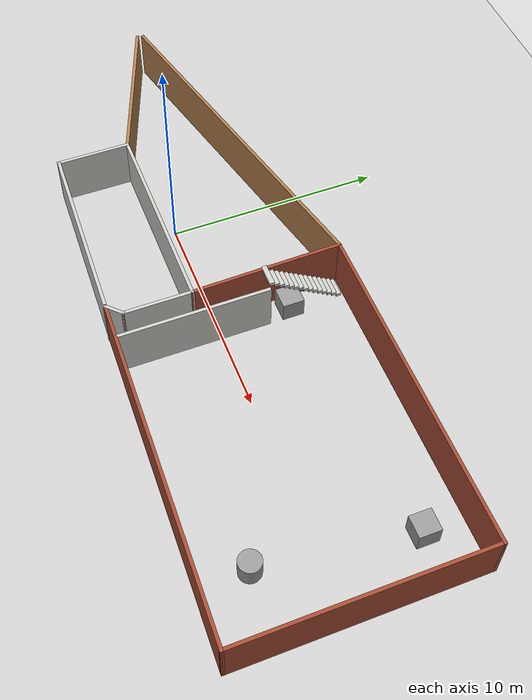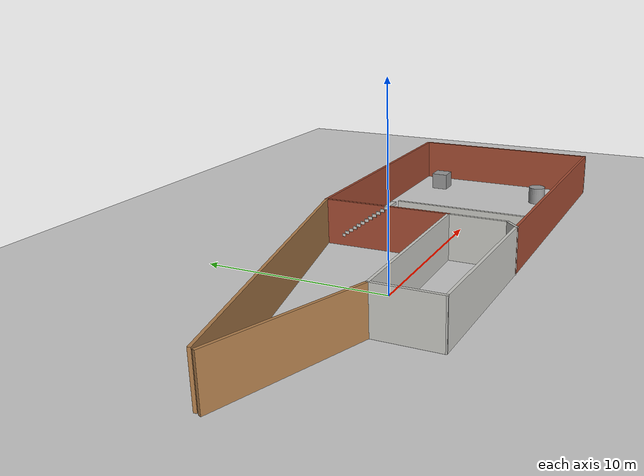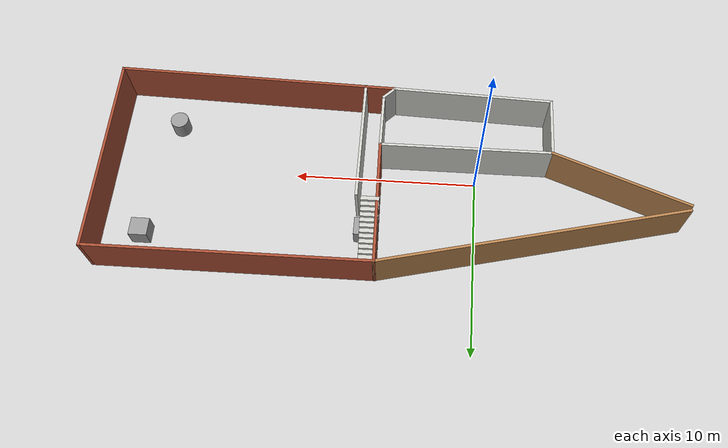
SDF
<sdf version="1.7">
 <world name="default">
  <light name="sun" type="directional">
   <pose>0 0 10 0 -0 0</pose>
   <diffuse>0.8 0.8 0.8 1</diffuse>
   <specular>0.2 0.2 0.2 1</specular>
   <attenuation>
    <range>1000</range>
    <constant>0.9</constant>
    <linear>0.01</linear>
    <quadratic>0.001</quadratic>
   </attenuation>
   <direction>-0.5 0.1 -0.9</direction>
   <spot><inner_angle>0</inner_angle><outer_angle>0</outer_angle><falloff>0</falloff></spot>
  </light>
  <model name="ground_plane">
   <static>1</static>
   <link name="link">
    <collision name="collision">
     <geometry><plane><normal>0 0 1</normal><size>100 100</size></plane></geometry>
     <surface>
      <contact><collide_bitmask>65535</collide_bitmask></contact>
      <friction><ode><mu>100</mu><mu2>50</mu2></ode></friction>
     </surface>
    </collision>
    <visual name="visual">
     <cast_shadows>0</cast_shadows>
     <geometry><plane><normal>0 0 1</normal><size>100 100</size></plane></geometry>
     <material>
      <script><uri>file://media/materials/scripts/gazebo.material</uri><name>Gazebo/Grey</name></script>
     </material>
    </visual>
   </link>
  </model>
  <gravity>0 0 -9.8</gravity>
  <magnetic_field>6e-06 2.3e-05 -4.2e-05</magnetic_field>
  <atmosphere type="adiabatic"/>
  <physics type="ode">
   <max_step_size>0.001</max_step_size>
   <real_time_factor>1</real_time_factor>
   <real_time_update_rate>1000</real_time_update_rate>
  </physics>
  <scene><ambient>0.4 0.4 0.4 1</ambient><background>0.7 0.7 0.7 1</background><shadows>1</shadows></scene>
  <spherical_coordinates>
   <surface_model>EARTH_WGS84</surface_model>
   <latitude_deg>0</latitude_deg>
   <longitude_deg>0</longitude_deg>
   <elevation>0</elevation>
   <heading_deg>0</heading_deg>
  </spherical_coordinates>
  <model name="walls_world">
   <pose>4.53343 0.476876 0 0 -0 0</pose>
   <link name="Stairs_0">
    <visual name="Stairs_0_Visual_0">
     <pose>1.09555 5.24812 0.083333 0 -0 0</pose>
     <geometry><box><size>1 0.233333 0.166667</size></box></geometry>
     <material>
      <script><uri>file://media/materials/scripts/gazebo.material</uri><name>Gazebo/CeilingTiled</name></script>
      <ambient>0.760784 0.662745 0.627451 1</ambient>
     </material>
     <meta><layer>0</layer></meta>
    </visual>
    <collision name="Stairs_0_Collision_0">
     <geometry><box><size>1 0.233333 0.166667</size></box></geometry>
     <pose>1.09555 5.24812 0.083333 0 -0 0</pose>
    </collision>
    <visual name="Stairs_0_Visual_1">
     <pose>1.09555 5.01479 0.25 0 -0 0</pose>
     <geometry><box><size>1 0.233333 0.166667</size></box></geometry>
     <material>
      <script><uri>file://media/materials/scripts/gazebo.material</uri><name>Gazebo/CeilingTiled</name></script>
      <ambient>0.760784 0.662745 0.627451 1</ambient>
     </material>
     <meta><layer>0</layer></meta>
    </visual>
    <collision name="Stairs_0_Collision_1">
     <geometry><box><size>1 0.233333 0.166667</size></box></geometry>
     <pose>1.09555 5.01479 0.25 0 -0 0</pose>
    </collision>
    <visual name="Stairs_0_Visual_2">
     <pose>1.09555 4.78145 0.416667 0 -0 0</pose>
     <geometry><box><size>1 0.233333 0.166667</size></box></geometry>
     <material>
      <script><uri>file://media/materials/scripts/gazebo.material</uri><name>Gazebo/CeilingTiled</name></script>
      <ambient>0.760784 0.662745 0.627451 1</ambient>
     </material>
     <meta><layer>0</layer></meta>
    </visual>
    <collision name="Stairs_0_Collision_2">
     <geometry><box><size>1 0.233333 0.166667</size></box></geometry>
     <pose>1.09555 4.78145 0.416667 0 -0 0</pose>
    </collision>
    <visual name="Stairs_0_Visual_3">
     <pose>1.09555 4.54812 0.583333 0 -0 0</pose>
     <geometry><box><size>1 0.233333 0.166667</size></box></geometry>
     <material>
      <script><uri>file://media/materials/scripts/gazebo.material</uri><name>Gazebo/CeilingTiled</name></script>
      <ambient>0.760784 0.662745 0.627451 1</ambient>
     </material>
     <meta><layer>0</layer></meta>
    </visual>
    <collision name="Stairs_0_Collision_3">
     <geometry><box><size>1 0.233333 0.166667</size></box></geometry>
     <pose>1.09555 4.54812 0.583333 0 -0 0</pose>
    </collision>
    <visual name="Stairs_0_Visual_4">
     <pose>1.09555 4.31479 0.75 0 -0 0</pose>
     <geometry><box><size>1 0.233333 0.166667</size></box></geometry>
     <material>
      <script><uri>file://media/materials/scripts/gazebo.material</uri><name>Gazebo/CeilingTiled</name></script>
      <ambient>0.760784 0.662745 0.627451 1</ambient>
     </material>
     <meta><layer>0</layer></meta>
    </visual>
    <collision name="Stairs_0_Collision_4">
     <geometry><box><size>1 0.233333 0.166667</size></box></geometry>
     <pose>1.09555 4.31479 0.75 0 -0 0</pose>
    </collision>
    <visual name="Stairs_0_Visual_5">
     <pose>1.09555 4.08145 0.916667 0 -0 0</pose>
     <geometry><box><size>1 0.233333 0.166667</size></box></geometry>
     <material>
      <script><uri>file://media/materials/scripts/gazebo.material</uri><name>Gazebo/CeilingTiled</name></script>
      <ambient>0.760784 0.662745 0.627451 1</ambient>
     </material>
     <meta><layer>0</layer></meta>
    </visual>
    <collision name="Stairs_0_Collision_5">
     <geometry><box><size>1 0.233333 0.166667</size></box></geometry>
     <pose>1.09555 4.08145 0.916667 0 -0 0</pose>
    </collision>
    <visual name="Stairs_0_Visual_6">
     <pose>1.09555 3.84812 1.08333 0 -0 0</pose>
     <geometry><box><size>1 0.233333 0.166667</size></box></geometry>
     <material>
      <script><uri>file://media/materials/scripts/gazebo.material</uri><name>Gazebo/CeilingTiled</name></script>
      <ambient>0.760784 0.662745 0.627451 1</ambient>
     </material>
     <meta><layer>0</layer></meta>
    </visual>
    <collision name="Stairs_0_Collision_6">
     <geometry><box><size>1 0.233333 0.166667</size></box></geometry>
     <pose>1.09555 3.84812 1.08333 0 -0 0</pose>
    </collision>
    <visual name="Stairs_0_Visual_7">
     <pose>1.09555 3.61479 1.25 0 -0 0</pose>
     <geometry><box><size>1 0.233333 0.166667</size></box></geometry>
     <material>
      <script><uri>file://media/materials/scripts/gazebo.material</uri><name>Gazebo/CeilingTiled</name></script>
      <ambient>0.760784 0.662745 0.627451 1</ambient>
     </material>
     <meta><layer>0</layer></meta>
    </visual>
    <collision name="Stairs_0_Collision_7">
     <geometry><box><size>1 0.233333 0.166667</size></box></geometry>
     <pose>1.09555 3.61479 1.25 0 -0 0</pose>
    </collision>
    <visual name="Stairs_0_Visual_8">
     <pose>1.09555 3.38145 1.41667 0 -0 0</pose>
     <geometry><box><size>1 0.233333 0.166667</size></box></geometry>
     <material>
      <script><uri>file://media/materials/scripts/gazebo.material</uri><name>Gazebo/CeilingTiled</name></script>
      <ambient>0.760784 0.662745 0.627451 1</ambient>
     </material>
     <meta><layer>0</layer></meta>
    </visual>
    <collision name="Stairs_0_Collision_8">
     <geometry><box><size>1 0.233333 0.166667</size></box></geometry>
     <pose>1.09555 3.38145 1.41667 0 -0 0</pose>
    </collision>
    <visual name="Stairs_0_Visual_9">
     <pose>1.09555 3.14812 1.58333 0 -0 0</pose>
     <geometry><box><size>1 0.233333 0.166667</size></box></geometry>
     <material>
      <script><uri>file://media/materials/scripts/gazebo.material</uri><name>Gazebo/CeilingTiled</name></script>
      <ambient>0.760784 0.662745 0.627451 1</ambient>
     </material>
     <meta><layer>0</layer></meta>
    </visual>
    <collision name="Stairs_0_Collision_9">
     <geometry><box><size>1 0.233333 0.166667</size></box></geometry>
     <pose>1.09555 3.14812 1.58333 0 -0 0</pose>
    </collision>
    <visual name="Stairs_0_Visual_10">
     <pose>1.09555 2.91479 1.75 0 -0 0</pose>
     <geometry><box><size>1 0.233333 0.166667</size></box></geometry>
     <material>
      <script><uri>file://media/materials/scripts/gazebo.material</uri><name>Gazebo/CeilingTiled</name></script>
      <ambient>0.760784 0.662745 0.627451 1</ambient>
     </material>
     <meta><layer>0</layer></meta>
    </visual>
    <collision name="Stairs_0_Collision_10">
     <geometry><box><size>1 0.233333 0.166667</size></box></geometry>
     <pose>1.09555 2.91479 1.75 0 -0 0</pose>
    </collision>
    <visual name="Stairs_0_Visual_11">
     <pose>1.09555 2.68145 1.91667 0 -0 0</pose>
     <geometry><box><size>1 0.233333 0.166667</size></box></geometry>
     <material>
      <script><uri>file://media/materials/scripts/gazebo.material</uri><name>Gazebo/CeilingTiled</name></script>
      <ambient>0.760784 0.662745 0.627451 1</ambient>
     </material>
     <meta><layer>0</layer></meta>
    </visual>
    <collision name="Stairs_0_Collision_11">
     <geometry><box><size>1 0.233333 0.166667</size></box></geometry>
     <pose>1.09555 2.68145 1.91667 0 -0 0</pose>
    </collision>
    <visual name="Stairs_0_Visual_12">
     <pose>1.09555 2.44812 2.08333 0 -0 0</pose>
     <geometry><box><size>1 0.233333 0.166667</size></box></geometry>
     <material>
      <script><uri>file://media/materials/scripts/gazebo.material</uri><name>Gazebo/CeilingTiled</name></script>
      <ambient>0.760784 0.662745 0.627451 1</ambient>
     </material>
     <meta><layer>0</layer></meta>
    </visual>
    <collision name="Stairs_0_Collision_12">
     <geometry><box><size>1 0.233333 0.166667</size></box></geometry>
     <pose>1.09555 2.44812 2.08333 0 -0 0</pose>
    </collision>
    <visual name="Stairs_0_Visual_13">
     <pose>1.09555 2.21479 2.25 0 -0 0</pose>
     <geometry><box><size>1 0.233333 0.166667</size></box></geometry>
     <material>
      <script><uri>file://media/materials/scripts/gazebo.material</uri><name>Gazebo/CeilingTiled</name></script>
      <ambient>0.760784 0.662745 0.627451 1</ambient>
     </material>
     <meta><layer>0</layer></meta>
    </visual>
    <collision name="Stairs_0_Collision_13">
     <geometry><box><size>1 0.233333 0.166667</size></box></geometry>
     <pose>1.09555 2.21479 2.25 0 -0 0</pose>
    </collision>
    <visual name="Stairs_0_Visual_14">
     <pose>1.09555 1.98145 2.41667 0 -0 0</pose>
     <geometry><box><size>1 0.233333 0.166667</size></box></geometry>
     <material>
      <script><uri>file://media/materials/scripts/gazebo.material</uri><name>Gazebo/CeilingTiled</name></script>
      <ambient>0.760784 0.662745 0.627451 1</ambient>
     </material>
     <meta><layer>0</layer></meta>
    </visual>
    <collision name="Stairs_0_Collision_14">
     <geometry><box><size>1 0.233333 0.166667</size></box></geometry>
     <pose>1.09555 1.98145 2.41667 0 -0 0</pose>
    </collision>
   </link>
   <link name="Wall_0">
    <collision name="Wall_0_Collision">
     <geometry><box><size>3.5 0.15 2.5</size></box></geometry>
     <pose>0 0 1.25 0 -0 0</pose>
    </collision>
    <visual name="Wall_0_Visual">
     <pose>0 0 1.25 0 -0 0</pose>
     <geometry><box><size>3.5 0.15 2.5</size></box></geometry>
     <material>
      <script><uri>file://media/materials/scripts/gazebo.material</uri><name>Gazebo/CeilingTiled</name></script>
      <ambient>1 1 1 1</ambient>
     </material>
     <meta><layer>0</layer></meta>
    </visual>
    <pose>-8.56343 -3.06188 0 0 -0 1.5708</pose>
   </link>
   <link name="Wall_1">
    <collision name="Wall_1_Collision">
     <geometry><box><size>9.5 0.15 2.5</size></box></geometry>
     <pose>0 0 1.25 0 -0 0</pose>
    </collision>
    <visual name="Wall_1_Visual">
     <pose>0 0 1.25 0 -0 0</pose>
     <geometry><box><size>9.5 0.15 2.5</size></box></geometry>
     <material>
      <script><uri>file://media/materials/scripts/gazebo.material</uri><name>Gazebo/CeilingTiled</name></script>
      <ambient>1 1 1 1</ambient>
     </material>
     <meta><layer>0</layer></meta>
    </visual>
    <pose>-3.88843 -1.38688 0 0 -0 0</pose>
   </link>
   <link name="Wall_10">
    <collision name="Wall_10_Collision">
     <geometry><box><size>16.9098 0.15 2.5</size></box></geometry>
     <pose>0 0 1.25 0 -0 0</pose>
    </collision>
    <visual name="Wall_10_Visual">
     <pose>0 0 1.25 0 -0 0</pose>
     <geometry><box><size>16.9098 0.15 2.5</size></box></geometry>
     <material>
      <script><uri>file://media/materials/scripts/gazebo.material</uri><name>Gazebo/Wood</name></script>
      <ambient>1 1 1 1</ambient>
     </material>
     <meta><layer>0</layer></meta>
    </visual>
    <pose>-7.49968 3.60157 0 0 -0 0.233855</pose>
   </link>
   <link name="Wall_11">
    <collision name="Wall_11_Collision">
     <geometry><box><size>15.25 0.15 2.5</size></box></geometry>
     <pose>0 0 1.25 0 -0 0</pose>
    </collision>
    <visual name="Wall_11_Visual">
     <pose>0 0 1.25 0 -0 0</pose>
     <geometry><box><size>15.25 0.15 2.5</size></box></geometry>
     <material>
      <script><uri>file://media/materials/scripts/gazebo.material</uri><name>Gazebo/Bricks</name></script>
      <ambient>1 1 1 1</ambient>
     </material>
     <meta><layer>0</layer></meta>
    </visual>
    <pose>8.20212 5.54344 0 0 -0 0</pose>
   </link>
   <link name="Wall_12">
    <collision name="Wall_12_Collision">
     <geometry><box><size>11.25 0.15 2.5</size></box></geometry>
     <pose>0 0 1.25 0 -0 0</pose>
    </collision>
    <visual name="Wall_12_Visual">
     <pose>0 0 1.25 0 -0 0</pose>
     <geometry><box><size>11.25 0.15 2.5</size></box></geometry>
     <material>
      <script><uri>file://media/materials/scripts/gazebo.material</uri><name>Gazebo/Bricks</name></script>
      <ambient>1 1 1 1</ambient>
     </material>
     <meta><layer>0</layer></meta>
    </visual>
    <pose>15.7521 -0.006558 0 0 -0 -1.5708</pose>
   </link>
   <link name="Wall_13">
    <collision name="Wall_13_Collision">
     <geometry><box><size>15.7236 0.15 2.5</size></box></geometry>
     <pose>0 0 1.25 0 -0 0</pose>
    </collision>
    <visual name="Wall_13_Visual">
     <pose>0 0 1.25 0 -0 0</pose>
     <geometry><box><size>15.7236 0.15 2.5</size></box></geometry>
     <material>
      <script><uri>file://media/materials/scripts/gazebo.material</uri><name>Gazebo/Bricks</name></script>
      <ambient>1 1 1 1</ambient>
     </material>
     <meta><layer>0</layer></meta>
    </visual>
    <pose>7.96882 -5.32224 0 0 -0 3.1115</pose>
   </link>
   <link name="Wall_15">
    <collision name="Wall_15_Collision">
     <geometry><box><size>7 0.15 2.5</size></box></geometry>
     <pose>0 0 1.25 0 -0 0</pose>
    </collision>
    <visual name="Wall_15_Visual">
     <pose>0 0 1.25 0 -0 0</pose>
     <geometry><box><size>7 0.15 2.5</size></box></geometry>
     <material>
      <script><uri>file://media/materials/scripts/gazebo.material</uri><name>Gazebo/CeilingTiled</name></script>
      <ambient>0.760784 0.662745 0.627451 1</ambient>
     </material>
     <meta><layer>0</layer></meta>
    </visual>
    <pose>1.84458 -1.68112 0 0 -0 1.5708</pose>
   </link>
   <link name="Wall_2">
    <collision name="Wall_2_Collision">
     <geometry><box><size>3.25 0.15 2.5</size></box></geometry>
     <pose>0 0 1.25 0 -0 0</pose>
    </collision>
    <visual name="Wall_2_Visual">
     <pose>0 0 1.25 0 -0 0</pose>
     <geometry><box><size>3.25 0.15 2.5</size></box></geometry>
     <material>
      <script><uri>file://media/materials/scripts/gazebo.material</uri><name>Gazebo/CeilingTiled</name></script>
      <ambient>1 1 1 1</ambient>
     </material>
     <meta><layer>0</layer></meta>
    </visual>
    <pose>0.786568 -2.93688 0 0 -0 -1.5708</pose>
   </link>
   <link name="Wall_3">
    <collision name="Wall_3_Collision">
     <geometry><box><size>1 0.15 2.5</size></box></geometry>
     <pose>0 0 1.25 0 -0 0</pose>
    </collision>
    <visual name="Wall_3_Visual">
     <pose>0 0 1.25 0 -0 0</pose>
     <geometry><box><size>1 0.15 2.5</size></box></geometry>
     <material>
      <script><uri>file://media/materials/scripts/gazebo.material</uri><name>Gazebo/CeilingTiled</name></script>
      <ambient>1 1 1 1</ambient>
     </material>
     <meta><layer>0</layer></meta>
    </visual>
    <pose>0.486048 -4.7874 0 0 -0 -2.35619</pose>
   </link>
   <link name="Wall_4">
    <collision name="Wall_4_Collision">
     <geometry><box><size>8.906 0.15 2.5</size></box></geometry>
     <pose>0 0 1.25 0 -0 0</pose>
    </collision>
    <visual name="Wall_4_Visual">
     <pose>0 0 1.25 0 -0 0</pose>
     <geometry><box><size>8.906 0.15 2.5</size></box></geometry>
     <material>
      <script><uri>file://media/materials/scripts/gazebo.material</uri><name>Gazebo/CeilingTiled</name></script>
      <ambient>1 1 1 1</ambient>
     </material>
     <meta><layer>0</layer></meta>
    </visual>
    <pose>-4.18895 -4.9124 0 0 -0 3.10149</pose>
   </link>
   <link name="Wall_6">
    <collision name="Wall_6_Collision">
     <geometry><box><size>7.08162 0.15 2.5</size></box></geometry>
     <pose>0 0 1.25 0 -0 0</pose>
    </collision>
    <visual name="Wall_6_Visual">
     <pose>0 0 1.25 0 -0 0</pose>
     <geometry><box><size>7.08162 0.15 2.5</size></box></geometry>
     <material>
      <script><uri>file://media/materials/scripts/gazebo.material</uri><name>Gazebo/Bricks</name></script>
      <ambient>1 1 1 1</ambient>
     </material>
     <meta><layer>0</layer></meta>
    </visual>
    <pose>0.719344 2.07828 0 0 -0 -1.5514</pose>
   </link>
   <link name="Wall_8">
    <collision name="Wall_8_Collision">
     <geometry><box><size>7.83312 0.15 2.5</size></box></geometry>
     <pose>0 0 1.25 0 -0 0</pose>
    </collision>
    <visual name="Wall_8_Visual">
     <pose>0 0 1.25 0 -0 0</pose>
     <geometry><box><size>7.83312 0.15 2.5</size></box></geometry>
     <material>
      <script><uri>file://media/materials/scripts/gazebo.material</uri><name>Gazebo/Wood</name></script>
      <ambient>1 1 1 1</ambient>
     </material>
     <meta><layer>0</layer></meta>
    </visual>
    <pose>-12.1479 -0.005179 0 0 -0 -0.367915</pose>
   </link>
   <static>1</static>
  </model>
  <model name="unit_box">
   <pose>17.9738 4.1181 0.499995 0 1e-05 0</pose>
   <link name="link">
    <inertial>
     <mass>1</mass>
     <inertia>
      <ixx>0.166667</ixx>
      <ixy>0</ixy>
      <ixz>0</ixz>
      <iyy>0.166667</iyy>
      <iyz>0</iyz>
      <izz>0.166667</izz>
     </inertia>
    </inertial>
    <collision name="collision"><geometry><box><size>1 1 1</size></box></geometry></collision>
    <visual name="visual">
     <geometry><box><size>1 1 1</size></box></geometry>
     <material>
      <script><name>Gazebo/Grey</name><uri>file://media/materials/scripts/gazebo.material</uri></script>
     </material>
    </visual>
   </link>
  </model>
  <model name="unit_box_0">
   <pose>5.97166 3.37255 0.499995 -1e-05 -0 0</pose>
   <link name="link">
    <inertial>
     <mass>1</mass>
     <inertia>
      <ixx>0.166667</ixx>
      <ixy>0</ixy>
      <ixz>0</ixz>
      <iyy>0.166667</iyy>
      <iyz>0</iyz>
      <izz>0.166667</izz>
     </inertia>
    </inertial>
    <collision name="collision"><geometry><box><size>1 1 1</size></box></geometry></collision>
    <visual name="visual">
     <geometry><box><size>1 1 1</size></box></geometry>
     <material>
      <script><name>Gazebo/Grey</name><uri>file://media/materials/scripts/gazebo.material</uri></script>
     </material>
    </visual>
   </link>
  </model>
  <model name="unit_cylinder">
   <pose>16.9989 -2.75261 0.499997 3e-06 4e-06 -0</pose>
   <link name="link">
    <inertial>
     <mass>1</mass>
     <inertia><ixx>0.145833</ixx><ixy>0</ixy><ixz>0</ixz><iyy>0.145833</iyy><iyz>0</iyz><izz>0.125</izz></inertia>
    </inertial>
    <collision name="collision">
     <geometry><cylinder><radius>0.5</radius><length>1</length></cylinder></geometry>
    </collision>
    <visual name="visual">
     <geometry><cylinder><radius>0.5</radius><length>1</length></cylinder></geometry>
     <material>
      <script><name>Gazebo/Grey</name><uri>file://media/materials/scripts/gazebo.material</uri></script>
     </material>
    </visual>
   </link>
  </model>
 </world>
</sdf>
